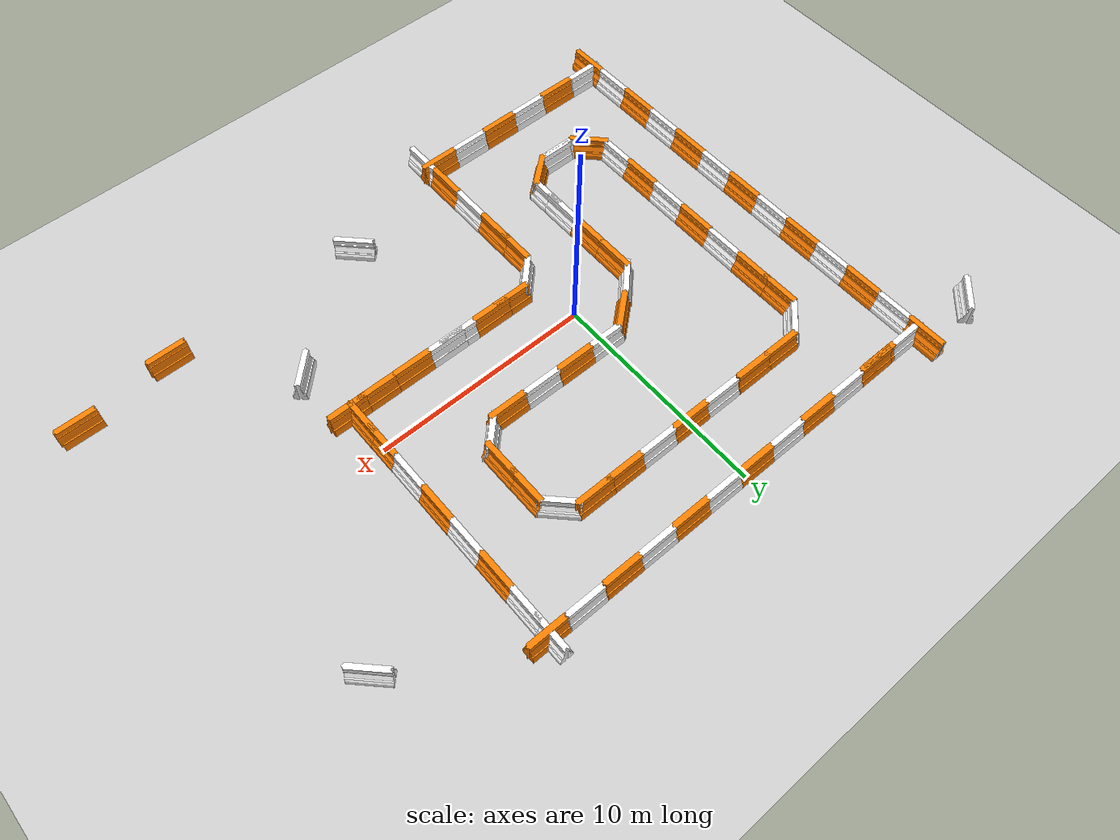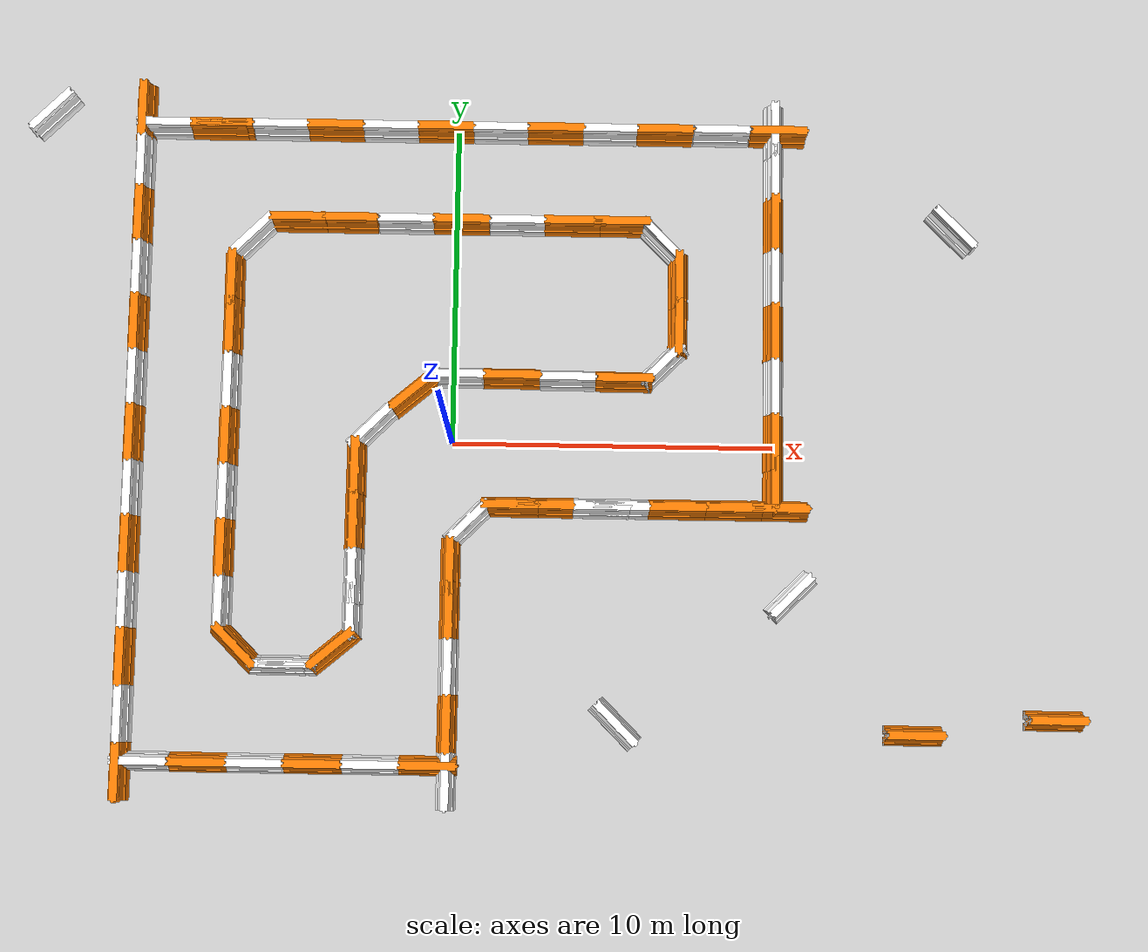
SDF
<sdf version="1.6">
 <world name="default">
  <light name="sun" type="directional">
   <pose>0 0 10 0 -0 0</pose>
   <diffuse>0.8 0.8 0.8 1</diffuse>
   <specular>0.2 0.2 0.2 1</specular>
   <attenuation>
    <range>1000</range>
    <constant>0.9</constant>
    <linear>0.01</linear>
    <quadratic>0.001</quadratic>
   </attenuation>
   <direction>-0.5 0.1 -0.9</direction>
  </light>
  <model name="ground_plane">
   <static>1</static>
   <link name="link">
    <collision name="collision">
     <geometry><plane><normal>0 0 1</normal><size>100 100</size></plane></geometry>
     <surface><friction><ode><mu>100</mu><mu2>50</mu2></ode></friction></surface>
    </collision>
    <visual name="visual">
     <cast_shadows>0</cast_shadows>
     <geometry><plane><normal>0 0 1</normal><size>100 100</size></plane></geometry>
     <material>
      <script><uri>file://media/materials/scripts/gazebo.material</uri><name>Gazebo/Grey</name></script>
     </material>
    </visual>
   </link>
  </model>
  <gravity>0 0 -9.8</gravity>
  <magnetic_field>6e-06 2.3e-05 -4.2e-05</magnetic_field>
  <atmosphere type="adiabatic"/>
  <physics name="default_physics" default="0" type="ode">
   <max_step_size>0.001</max_step_size>
   <real_time_factor>1</real_time_factor>
   <real_time_update_rate>1000</real_time_update_rate>
  </physics>
  <scene><ambient>0.4 0.4 0.4 1</ambient><background>0.7 0.7 0.7 1</background><shadows>1</shadows></scene>
  <spherical_coordinates>
   <surface_model>EARTH_WGS84</surface_model>
   <latitude_deg>0</latitude_deg>
   <longitude_deg>0</longitude_deg>
   <elevation>0</elevation>
   <heading_deg>0</heading_deg>
  </spherical_coordinates>
  <model name="drc_practice_organge_jersey_barrier">
   <static>1</static>
   <link name="link">
    <visual name="visual">
     <geometry>
      <mesh><uri>model://drc_practice_orange_jersey_barrier/meshes/jersey_barrier.dae</uri></mesh>
     </geometry>
    </visual>
    <collision name="collision">
     <geometry>
      <mesh><uri>model://drc_practice_orange_jersey_barrier/meshes/jersey_barrier.dae</uri></mesh>
     </geometry>
    </collision>
   </link>
   <pose>-10 7.08087 0 0 -0 0</pose>
  </model>
  <model name="drc_practice_white_jersey_barrier">
   <static>1</static>
   <link name="link">
    <visual name="visual">
     <geometry>
      <mesh><uri>model://drc_practice_white_jersey_barrier/meshes/jersey_barrier.dae</uri></mesh>
     </geometry>
    </visual>
    <collision name="collision">
     <geometry>
      <mesh><uri>model://drc_practice_white_jersey_barrier/meshes/jersey_barrier.dae</uri></mesh>
     </geometry>
    </collision>
   </link>
   <pose>-12.8795 10.3745 0 0 0 -0.785398</pose>
  </model>
  <model name="drc_practice_white_jersey_barrier_0">
   <static>1</static>
   <link name="link">
    <visual name="visual">
     <geometry>
      <mesh><uri>model://drc_practice_white_jersey_barrier/meshes/jersey_barrier.dae</uri></mesh>
     </geometry>
    </visual>
    <collision name="collision">
     <geometry>
      <mesh><uri>model://drc_practice_white_jersey_barrier/meshes/jersey_barrier.dae</uri></mesh>
     </geometry>
    </collision>
   </link>
   <pose>-10 5.35665 0 0 -0 0</pose>
  </model>
  <model name="drc_practice_organge_jersey_barrier_0">
   <static>1</static>
   <link name="link">
    <visual name="visual">
     <geometry>
      <mesh><uri>model://drc_practice_orange_jersey_barrier/meshes/jersey_barrier.dae</uri></mesh>
     </geometry>
    </visual>
    <collision name="collision">
     <geometry>
      <mesh><uri>model://drc_practice_orange_jersey_barrier/meshes/jersey_barrier.dae</uri></mesh>
     </geometry>
    </collision>
   </link>
   <pose>-10 3.60758 0 0 -0 0</pose>
  </model>
  <model name="drc_practice_white_jersey_barrier_1">
   <static>1</static>
   <link name="link">
    <visual name="visual">
     <geometry>
      <mesh><uri>model://drc_practice_white_jersey_barrier/meshes/jersey_barrier.dae</uri></mesh>
     </geometry>
    </visual>
    <collision name="collision">
     <geometry>
      <mesh><uri>model://drc_practice_white_jersey_barrier/meshes/jersey_barrier.dae</uri></mesh>
     </geometry>
    </collision>
   </link>
   <pose>-10 1.85885 0 0 -0 0</pose>
  </model>
  <model name="drc_practice_organge_jersey_barrier_1">
   <static>1</static>
   <link name="link">
    <visual name="visual">
     <geometry>
      <mesh><uri>model://drc_practice_orange_jersey_barrier/meshes/jersey_barrier.dae</uri></mesh>
     </geometry>
    </visual>
    <collision name="collision">
     <geometry>
      <mesh><uri>model://drc_practice_orange_jersey_barrier/meshes/jersey_barrier.dae</uri></mesh>
     </geometry>
    </collision>
   </link>
   <pose>-10 0.11035 0 0 -0 0</pose>
  </model>
  <model name="drc_practice_white_jersey_barrier_2">
   <static>1</static>
   <link name="link">
    <visual name="visual">
     <geometry>
      <mesh><uri>model://drc_practice_white_jersey_barrier/meshes/jersey_barrier.dae</uri></mesh>
     </geometry>
    </visual>
    <collision name="collision">
     <geometry>
      <mesh><uri>model://drc_practice_white_jersey_barrier/meshes/jersey_barrier.dae</uri></mesh>
     </geometry>
    </collision>
   </link>
   <pose>-10 -1.61051 0 0 -0 0</pose>
  </model>
  <model name="drc_practice_white_jersey_barrier_3">
   <static>1</static>
   <link name="link">
    <visual name="visual">
     <geometry>
      <mesh><uri>model://drc_practice_white_jersey_barrier/meshes/jersey_barrier.dae</uri></mesh>
     </geometry>
    </visual>
    <collision name="collision">
     <geometry>
      <mesh><uri>model://drc_practice_white_jersey_barrier/meshes/jersey_barrier.dae</uri></mesh>
     </geometry>
    </collision>
   </link>
   <pose>-10 -5.08491 0 0 -0 0</pose>
  </model>
  <model name="drc_practice_organge_jersey_barrier_3">
   <static>1</static>
   <link name="link">
    <visual name="visual">
     <geometry>
      <mesh><uri>model://drc_practice_orange_jersey_barrier/meshes/jersey_barrier.dae</uri></mesh>
     </geometry>
    </visual>
    <collision name="collision">
     <geometry>
      <mesh><uri>model://drc_practice_orange_jersey_barrier/meshes/jersey_barrier.dae</uri></mesh>
     </geometry>
    </collision>
   </link>
   <pose>-10 -6.82391 0 0 -0 0</pose>
  </model>
  <model name="drc_practice_white_jersey_barrier_4">
   <static>1</static>
   <link name="link">
    <visual name="visual">
     <geometry>
      <mesh><uri>model://drc_practice_white_jersey_barrier/meshes/jersey_barrier.dae</uri></mesh>
     </geometry>
    </visual>
    <collision name="collision">
     <geometry>
      <mesh><uri>model://drc_practice_white_jersey_barrier/meshes/jersey_barrier.dae</uri></mesh>
     </geometry>
    </collision>
   </link>
   <pose>5.15234 -8.64011 0 0 -0 0.785398</pose>
  </model>
  <model name="drc_practice_organge_jersey_barrier_4">
   <static>1</static>
   <link name="link">
    <visual name="visual">
     <geometry>
      <mesh><uri>model://drc_practice_orange_jersey_barrier/meshes/jersey_barrier.dae</uri></mesh>
     </geometry>
    </visual>
    <collision name="collision">
     <geometry>
      <mesh><uri>model://drc_practice_orange_jersey_barrier/meshes/jersey_barrier.dae</uri></mesh>
     </geometry>
    </collision>
   </link>
   <pose>-7.39341 10 0 0 -0 1.5708</pose>
  </model>
  <model name="drc_practice_white_jersey_barrier_5">
   <static>1</static>
   <link name="link">
    <visual name="visual">
     <geometry>
      <mesh><uri>model://drc_practice_white_jersey_barrier/meshes/jersey_barrier.dae</uri></mesh>
     </geometry>
    </visual>
    <collision name="collision">
     <geometry>
      <mesh><uri>model://drc_practice_white_jersey_barrier/meshes/jersey_barrier.dae</uri></mesh>
     </geometry>
    </collision>
   </link>
   <pose>-5.63238 10 0 0 -0 1.5708</pose>
  </model>
  <model name="drc_practice_organge_jersey_barrier_4_clone">
   <static>1</static>
   <link name="link">
    <visual name="visual">
     <geometry>
      <mesh><uri>model://drc_practice_orange_jersey_barrier/meshes/jersey_barrier.dae</uri></mesh>
     </geometry>
    </visual>
    <collision name="collision">
     <geometry>
      <mesh><uri>model://drc_practice_orange_jersey_barrier/meshes/jersey_barrier.dae</uri></mesh>
     </geometry>
    </collision>
   </link>
   <pose>-3.89758 10 0 0 -0 1.5708</pose>
  </model>
  <model name="drc_practice_white_jersey_barrier_5_clone">
   <static>1</static>
   <link name="link">
    <visual name="visual">
     <geometry>
      <mesh><uri>model://drc_practice_white_jersey_barrier/meshes/jersey_barrier.dae</uri></mesh>
     </geometry>
    </visual>
    <collision name="collision">
     <geometry>
      <mesh><uri>model://drc_practice_white_jersey_barrier/meshes/jersey_barrier.dae</uri></mesh>
     </geometry>
    </collision>
   </link>
   <pose>-2.14743 10 0 0 -0 1.5708</pose>
  </model>
  <model name="drc_practice_organge_jersey_barrier_4_clone_clone">
   <static>1</static>
   <link name="link">
    <visual name="visual">
     <geometry>
      <mesh><uri>model://drc_practice_orange_jersey_barrier/meshes/jersey_barrier.dae</uri></mesh>
     </geometry>
    </visual>
    <collision name="collision">
     <geometry>
      <mesh><uri>model://drc_practice_orange_jersey_barrier/meshes/jersey_barrier.dae</uri></mesh>
     </geometry>
    </collision>
   </link>
   <pose>-0.410261 10 0 0 -0 1.5708</pose>
  </model>
  <model name="drc_practice_white_jersey_barrier_5_clone_clone">
   <static>1</static>
   <link name="link">
    <visual name="visual">
     <geometry>
      <mesh><uri>model://drc_practice_white_jersey_barrier/meshes/jersey_barrier.dae</uri></mesh>
     </geometry>
    </visual>
    <collision name="collision">
     <geometry>
      <mesh><uri>model://drc_practice_white_jersey_barrier/meshes/jersey_barrier.dae</uri></mesh>
     </geometry>
    </collision>
   </link>
   <pose>1.32669 10 0 0 -0 1.5708</pose>
  </model>
  <model name="drc_practice_organge_jersey_barrier_4_clone_clone_clone">
   <static>1</static>
   <link name="link">
    <visual name="visual">
     <geometry>
      <mesh><uri>model://drc_practice_orange_jersey_barrier/meshes/jersey_barrier.dae</uri></mesh>
     </geometry>
    </visual>
    <collision name="collision">
     <geometry>
      <mesh><uri>model://drc_practice_orange_jersey_barrier/meshes/jersey_barrier.dae</uri></mesh>
     </geometry>
    </collision>
   </link>
   <pose>3.06357 10 0 0 -0 1.5708</pose>
  </model>
  <model name="drc_practice_white_jersey_barrier_5_clone_clone_clone">
   <static>1</static>
   <link name="link">
    <visual name="visual">
     <geometry>
      <mesh><uri>model://drc_practice_white_jersey_barrier/meshes/jersey_barrier.dae</uri></mesh>
     </geometry>
    </visual>
    <collision name="collision">
     <geometry>
      <mesh><uri>model://drc_practice_white_jersey_barrier/meshes/jersey_barrier.dae</uri></mesh>
     </geometry>
    </collision>
   </link>
   <pose>4.7739 10 0 0 -0 1.5708</pose>
  </model>
  <model name="drc_practice_organge_jersey_barrier_4_clone_clone_clone_clone">
   <static>1</static>
   <link name="link">
    <visual name="visual">
     <geometry>
      <mesh><uri>model://drc_practice_orange_jersey_barrier/meshes/jersey_barrier.dae</uri></mesh>
     </geometry>
    </visual>
    <collision name="collision">
     <geometry>
      <mesh><uri>model://drc_practice_orange_jersey_barrier/meshes/jersey_barrier.dae</uri></mesh>
     </geometry>
    </collision>
   </link>
   <pose>6.52402 10 0 0 -0 1.5708</pose>
  </model>
  <model name="drc_practice_white_jersey_barrier_4_clone">
   <static>1</static>
   <link name="link">
    <visual name="visual">
     <geometry>
      <mesh><uri>model://drc_practice_white_jersey_barrier/meshes/jersey_barrier.dae</uri></mesh>
     </geometry>
    </visual>
    <collision name="collision">
     <geometry>
      <mesh><uri>model://drc_practice_white_jersey_barrier/meshes/jersey_barrier.dae</uri></mesh>
     </geometry>
    </collision>
   </link>
   <pose>15.632 6.97613 0 0 -0 0.785398</pose>
  </model>
  <model name="drc_practice_organge_jersey_barrier_clone">
   <static>1</static>
   <link name="link">
    <visual name="visual">
     <geometry>
      <mesh><uri>model://drc_practice_orange_jersey_barrier/meshes/jersey_barrier.dae</uri></mesh>
     </geometry>
    </visual>
    <collision name="collision">
     <geometry>
      <mesh><uri>model://drc_practice_orange_jersey_barrier/meshes/jersey_barrier.dae</uri></mesh>
     </geometry>
    </collision>
   </link>
   <pose>10 7.06873 0 0 -0 0</pose>
  </model>
  <model name="drc_practice_white_jersey_barrier_6">
   <static>1</static>
   <link name="link">
    <visual name="visual">
     <geometry>
      <mesh><uri>model://drc_practice_white_jersey_barrier/meshes/jersey_barrier.dae</uri></mesh>
     </geometry>
    </visual>
    <collision name="collision">
     <geometry>
      <mesh><uri>model://drc_practice_white_jersey_barrier/meshes/jersey_barrier.dae</uri></mesh>
     </geometry>
    </collision>
   </link>
   <pose>10 5.32155 0 0 -0 0</pose>
  </model>
  <model name="drc_practice_organge_jersey_barrier_5">
   <static>1</static>
   <link name="link">
    <visual name="visual">
     <geometry>
      <mesh><uri>model://drc_practice_orange_jersey_barrier/meshes/jersey_barrier.dae</uri></mesh>
     </geometry>
    </visual>
    <collision name="collision">
     <geometry>
      <mesh><uri>model://drc_practice_orange_jersey_barrier/meshes/jersey_barrier.dae</uri></mesh>
     </geometry>
    </collision>
   </link>
   <pose>10 3.5821 0 0 -0 0</pose>
  </model>
  <model name="drc_practice_white_jersey_barrier_7">
   <static>1</static>
   <link name="link">
    <visual name="visual">
     <geometry>
      <mesh><uri>model://drc_practice_white_jersey_barrier/meshes/jersey_barrier.dae</uri></mesh>
     </geometry>
    </visual>
    <collision name="collision">
     <geometry>
      <mesh><uri>model://drc_practice_white_jersey_barrier/meshes/jersey_barrier.dae</uri></mesh>
     </geometry>
    </collision>
   </link>
   <pose>10 1.85279 0 0 -0 0</pose>
  </model>
  <model name="drc_practice_organge_jersey_barrier_6">
   <static>1</static>
   <link name="link">
    <visual name="visual">
     <geometry>
      <mesh><uri>model://drc_practice_orange_jersey_barrier/meshes/jersey_barrier.dae</uri></mesh>
     </geometry>
    </visual>
    <collision name="collision">
     <geometry>
      <mesh><uri>model://drc_practice_orange_jersey_barrier/meshes/jersey_barrier.dae</uri></mesh>
     </geometry>
    </collision>
   </link>
   <pose>10 0.08678 0 0 -0 0</pose>
  </model>
  <model name="drc_practice_white_jersey_barrier_clone">
   <static>1</static>
   <link name="link">
    <visual name="visual">
     <geometry>
      <mesh><uri>model://drc_practice_white_jersey_barrier/meshes/jersey_barrier.dae</uri></mesh>
     </geometry>
    </visual>
    <collision name="collision">
     <geometry>
      <mesh><uri>model://drc_practice_white_jersey_barrier/meshes/jersey_barrier.dae</uri></mesh>
     </geometry>
    </collision>
   </link>
   <pose>10.5386 -4.66593 0 0 0 -0.785398</pose>
  </model>
  <model name="drc_practice_organge_jersey_barrier_4_clone_clone_clone_clone_clone">
   <static>1</static>
   <link name="link">
    <visual name="visual">
     <geometry>
      <mesh><uri>model://drc_practice_orange_jersey_barrier/meshes/jersey_barrier.dae</uri></mesh>
     </geometry>
    </visual>
    <collision name="collision">
     <geometry>
      <mesh><uri>model://drc_practice_orange_jersey_barrier/meshes/jersey_barrier.dae</uri></mesh>
     </geometry>
    </collision>
   </link>
   <pose>7 -2 0 0 -0 1.5708</pose>
  </model>
  <model name="drc_practice_white_jersey_barrier_5_clone_clone_clone_clone">
   <static>1</static>
   <link name="link">
    <visual name="visual">
     <geometry>
      <mesh><uri>model://drc_practice_white_jersey_barrier/meshes/jersey_barrier.dae</uri></mesh>
     </geometry>
    </visual>
    <collision name="collision">
     <geometry>
      <mesh><uri>model://drc_practice_white_jersey_barrier/meshes/jersey_barrier.dae</uri></mesh>
     </geometry>
    </collision>
   </link>
   <pose>4.6576 -2 0 0 -0 1.5708</pose>
  </model>
  <model name="drc_practice_organge_jersey_barrier_4_clone_clone_clone_clone_0">
   <static>1</static>
   <link name="link">
    <visual name="visual">
     <geometry>
      <mesh><uri>model://drc_practice_orange_jersey_barrier/meshes/jersey_barrier.dae</uri></mesh>
     </geometry>
    </visual>
    <collision name="collision">
     <geometry>
      <mesh><uri>model://drc_practice_orange_jersey_barrier/meshes/jersey_barrier.dae</uri></mesh>
     </geometry>
    </collision>
   </link>
   <pose>2.90363 -2 0 0 -0 1.5708</pose>
  </model>
  <model name="drc_practice_white_jersey_barrier_clone_0">
   <static>1</static>
   <link name="link">
    <visual name="visual">
     <geometry>
      <mesh><uri>model://drc_practice_white_jersey_barrier/meshes/jersey_barrier.dae</uri></mesh>
     </geometry>
    </visual>
    <collision name="collision">
     <geometry>
      <mesh><uri>model://drc_practice_white_jersey_barrier/meshes/jersey_barrier.dae</uri></mesh>
     </geometry>
    </collision>
   </link>
   <pose>0.555745 -2.52163 0 0 0 -0.785398</pose>
  </model>
  <model name="drc_practice_organge_jersey_barrier_clone_clone">
   <static>1</static>
   <link name="link">
    <visual name="visual">
     <geometry>
      <mesh><uri>model://drc_practice_orange_jersey_barrier/meshes/jersey_barrier.dae</uri></mesh>
     </geometry>
    </visual>
    <collision name="collision">
     <geometry>
      <mesh><uri>model://drc_practice_orange_jersey_barrier/meshes/jersey_barrier.dae</uri></mesh>
     </geometry>
    </collision>
   </link>
   <pose>0 -3.8979 0 0 -0 0</pose>
  </model>
  <model name="drc_practice_white_jersey_barrier_7_clone">
   <static>1</static>
   <link name="link">
    <visual name="visual">
     <geometry>
      <mesh><uri>model://drc_practice_white_jersey_barrier/meshes/jersey_barrier.dae</uri></mesh>
     </geometry>
    </visual>
    <collision name="collision">
     <geometry>
      <mesh><uri>model://drc_practice_white_jersey_barrier/meshes/jersey_barrier.dae</uri></mesh>
     </geometry>
    </collision>
   </link>
   <pose>0 -7 0 0 -0 0</pose>
  </model>
  <model name="drc_practice_organge_jersey_barrier_4_clone_0">
   <static>1</static>
   <link name="link">
    <visual name="visual">
     <geometry>
      <mesh><uri>model://drc_practice_orange_jersey_barrier/meshes/jersey_barrier.dae</uri></mesh>
     </geometry>
    </visual>
    <collision name="collision">
     <geometry>
      <mesh><uri>model://drc_practice_orange_jersey_barrier/meshes/jersey_barrier.dae</uri></mesh>
     </geometry>
    </collision>
   </link>
   <pose>-7.55978 -10 0 0 -0 1.5708</pose>
  </model>
  <model name="drc_practice_white_jersey_barrier_5_clone_0">
   <static>1</static>
   <link name="link">
    <visual name="visual">
     <geometry>
      <mesh><uri>model://drc_practice_white_jersey_barrier/meshes/jersey_barrier.dae</uri></mesh>
     </geometry>
    </visual>
    <collision name="collision">
     <geometry>
      <mesh><uri>model://drc_practice_white_jersey_barrier/meshes/jersey_barrier.dae</uri></mesh>
     </geometry>
    </collision>
   </link>
   <pose>-5.81995 -10 0 0 -0 1.5708</pose>
  </model>
  <model name="drc_practice_organge_jersey_barrier_4_clone_clone_0">
   <static>1</static>
   <link name="link">
    <visual name="visual">
     <geometry>
      <mesh><uri>model://drc_practice_orange_jersey_barrier/meshes/jersey_barrier.dae</uri></mesh>
     </geometry>
    </visual>
    <collision name="collision">
     <geometry>
      <mesh><uri>model://drc_practice_orange_jersey_barrier/meshes/jersey_barrier.dae</uri></mesh>
     </geometry>
    </collision>
   </link>
   <pose>-4.05681 -10 0 0 -0 1.5708</pose>
  </model>
  <model name="drc_practice_white_jersey_barrier_5_clone_1">
   <static>1</static>
   <link name="link">
    <visual name="visual">
     <geometry>
      <mesh><uri>model://drc_practice_white_jersey_barrier/meshes/jersey_barrier.dae</uri></mesh>
     </geometry>
    </visual>
    <collision name="collision">
     <geometry>
      <mesh><uri>model://drc_practice_white_jersey_barrier/meshes/jersey_barrier.dae</uri></mesh>
     </geometry>
    </collision>
   </link>
   <pose>-2.29786 -10 0 0 -0 1.5708</pose>
  </model>
  <model name="drc_practice_organge_jersey_barrier_7">
   <static>1</static>
   <link name="link">
    <visual name="visual">
     <geometry>
      <mesh><uri>model://drc_practice_orange_jersey_barrier/meshes/jersey_barrier.dae</uri></mesh>
     </geometry>
    </visual>
    <collision name="collision">
     <geometry>
      <mesh><uri>model://drc_practice_orange_jersey_barrier/meshes/jersey_barrier.dae</uri></mesh>
     </geometry>
    </collision>
   </link>
   <pose>-1.23857 1.54684 0 0 0 -0.867327</pose>
  </model>
  <model name="drc_practice_organge_jersey_barrier_9">
   <static>1</static>
   <link name="link">
    <visual name="visual">
     <geometry>
      <mesh><uri>model://drc_practice_orange_jersey_barrier/meshes/jersey_barrier.dae</uri></mesh>
     </geometry>
    </visual>
    <collision name="collision">
     <geometry>
      <mesh><uri>model://drc_practice_orange_jersey_barrier/meshes/jersey_barrier.dae</uri></mesh>
     </geometry>
    </collision>
   </link>
   <pose>-7 3.5532 0 0 -0 0</pose>
  </model>
  <model name="drc_practice_white_jersey_barrier_8">
   <static>1</static>
   <link name="link">
    <visual name="visual">
     <geometry>
      <mesh><uri>model://drc_practice_white_jersey_barrier/meshes/jersey_barrier.dae</uri></mesh>
     </geometry>
    </visual>
    <collision name="collision">
     <geometry>
      <mesh><uri>model://drc_practice_white_jersey_barrier/meshes/jersey_barrier.dae</uri></mesh>
     </geometry>
    </collision>
   </link>
   <pose>-7.01367 1.8029 0 0 -0 0</pose>
  </model>
  <model name="drc_practice_organge_jersey_barrier_10">
   <static>1</static>
   <link name="link">
    <visual name="visual">
     <geometry>
      <mesh><uri>model://drc_practice_orange_jersey_barrier/meshes/jersey_barrier.dae</uri></mesh>
     </geometry>
    </visual>
    <collision name="collision">
     <geometry>
      <mesh><uri>model://drc_practice_orange_jersey_barrier/meshes/jersey_barrier.dae</uri></mesh>
     </geometry>
    </collision>
   </link>
   <pose>-7.02522 0.054065 0 0 -0 0</pose>
  </model>
  <model name="drc_practice_white_jersey_barrier_9">
   <static>1</static>
   <link name="link">
    <visual name="visual">
     <geometry>
      <mesh><uri>model://drc_practice_white_jersey_barrier/meshes/jersey_barrier.dae</uri></mesh>
     </geometry>
    </visual>
    <collision name="collision">
     <geometry>
      <mesh><uri>model://drc_practice_white_jersey_barrier/meshes/jersey_barrier.dae</uri></mesh>
     </geometry>
    </collision>
   </link>
   <pose>-7.03681 -1.6945 0 0 -0 0</pose>
  </model>
  <model name="drc_practice_organge_jersey_barrier_11">
   <static>1</static>
   <link name="link">
    <visual name="visual">
     <geometry>
      <mesh><uri>model://drc_practice_orange_jersey_barrier/meshes/jersey_barrier.dae</uri></mesh>
     </geometry>
    </visual>
    <collision name="collision">
     <geometry>
      <mesh><uri>model://drc_practice_orange_jersey_barrier/meshes/jersey_barrier.dae</uri></mesh>
     </geometry>
    </collision>
   </link>
   <pose>-7.04825 -3.42207 0 0 -0 0</pose>
  </model>
  <model name="drc_practice_organge_jersey_barrier_12">
   <static>1</static>
   <link name="link">
    <visual name="visual">
     <geometry>
      <mesh><uri>model://drc_practice_orange_jersey_barrier/meshes/jersey_barrier.dae</uri></mesh>
     </geometry>
    </visual>
    <collision name="collision">
     <geometry>
      <mesh><uri>model://drc_practice_orange_jersey_barrier/meshes/jersey_barrier.dae</uri></mesh>
     </geometry>
    </collision>
   </link>
   <pose>-6.53992 -6.44734 0 0 -0 0.785398</pose>
  </model>
  <model name="drc_practice_white_jersey_barrier_5_clone_0_clone">
   <static>1</static>
   <link name="link">
    <visual name="visual">
     <geometry>
      <mesh><uri>model://drc_practice_white_jersey_barrier/meshes/jersey_barrier.dae</uri></mesh>
     </geometry>
    </visual>
    <collision name="collision">
     <geometry>
      <mesh><uri>model://drc_practice_white_jersey_barrier/meshes/jersey_barrier.dae</uri></mesh>
     </geometry>
    </collision>
   </link>
   <pose>-5.24161 -7.00081 0 0 -0 1.5708</pose>
  </model>
  <model name="drc_practice_organge_jersey_barrier_7_clone">
   <static>1</static>
   <link name="link">
    <visual name="visual">
     <geometry>
      <mesh><uri>model://drc_practice_orange_jersey_barrier/meshes/jersey_barrier.dae</uri></mesh>
     </geometry>
    </visual>
    <collision name="collision">
     <geometry>
      <mesh><uri>model://drc_practice_orange_jersey_barrier/meshes/jersey_barrier.dae</uri></mesh>
     </geometry>
    </collision>
   </link>
   <pose>-3.56152 -6.50014 0 0 0 -0.867327</pose>
  </model>
  <model name="drc_practice_white_jersey_barrier_7_clone_clone">
   <static>1</static>
   <link name="link">
    <visual name="visual">
     <geometry>
      <mesh><uri>model://drc_practice_white_jersey_barrier/meshes/jersey_barrier.dae</uri></mesh>
     </geometry>
    </visual>
    <collision name="collision">
     <geometry>
      <mesh><uri>model://drc_practice_white_jersey_barrier/meshes/jersey_barrier.dae</uri></mesh>
     </geometry>
    </collision>
   </link>
   <pose>-3 -4.24136 0 0 -0 0</pose>
  </model>
  <model name="drc_practice_white_jersey_barrier_clone_1">
   <static>1</static>
   <link name="link">
    <visual name="visual">
     <geometry>
      <mesh><uri>model://drc_practice_white_jersey_barrier/meshes/jersey_barrier.dae</uri></mesh>
     </geometry>
    </visual>
    <collision name="collision">
     <geometry>
      <mesh><uri>model://drc_practice_white_jersey_barrier/meshes/jersey_barrier.dae</uri></mesh>
     </geometry>
    </collision>
   </link>
   <pose>-2.54153 0.412015 0 0 0 -0.785398</pose>
  </model>
  <model name="drc_practice_organge_jersey_barrier_8_clone">
   <static>1</static>
   <link name="link">
    <visual name="visual">
     <geometry>
      <mesh><uri>model://drc_practice_orange_jersey_barrier/meshes/jersey_barrier.dae</uri></mesh>
     </geometry>
    </visual>
    <collision name="collision">
     <geometry>
      <mesh><uri>model://drc_practice_orange_jersey_barrier/meshes/jersey_barrier.dae</uri></mesh>
     </geometry>
    </collision>
   </link>
   <pose>-3 -2.5094 0 0 -0 0</pose>
  </model>
  <model name="drc_practice_organge_jersey_barrier_4_clone_clone_clone_clone_0_clone">
   <static>1</static>
   <link name="link">
    <visual name="visual">
     <geometry>
      <mesh><uri>model://drc_practice_orange_jersey_barrier/meshes/jersey_barrier.dae</uri></mesh>
     </geometry>
    </visual>
    <collision name="collision">
     <geometry>
      <mesh><uri>model://drc_practice_orange_jersey_barrier/meshes/jersey_barrier.dae</uri></mesh>
     </geometry>
    </collision>
   </link>
   <pose>18.6082 -8.35515 0 0 -0 1.5708</pose>
  </model>
  <model name="drc_practice_organge_jersey_barrier_4_clone_clone_clone_clone_clone_clone">
   <static>1</static>
   <link name="link">
    <visual name="visual">
     <geometry>
      <mesh><uri>model://drc_practice_orange_jersey_barrier/meshes/jersey_barrier.dae</uri></mesh>
     </geometry>
    </visual>
    <collision name="collision">
     <geometry>
      <mesh><uri>model://drc_practice_orange_jersey_barrier/meshes/jersey_barrier.dae</uri></mesh>
     </geometry>
    </collision>
   </link>
   <pose>1.81686 2.05907 0 0 -0 1.5708</pose>
  </model>
  <model name="drc_practice_white_jersey_barrier_clone_clone">
   <static>1</static>
   <link name="link">
    <visual name="visual">
     <geometry>
      <mesh><uri>model://drc_practice_white_jersey_barrier/meshes/jersey_barrier.dae</uri></mesh>
     </geometry>
    </visual>
    <collision name="collision">
     <geometry>
      <mesh><uri>model://drc_practice_white_jersey_barrier/meshes/jersey_barrier.dae</uri></mesh>
     </geometry>
    </collision>
   </link>
   <pose>6.52182 2.50856 0 0 0 -0.785398</pose>
  </model>
  <model name="drc_practice_organge_jersey_barrier_6_clone">
   <static>1</static>
   <link name="link">
    <visual name="visual">
     <geometry>
      <mesh><uri>model://drc_practice_orange_jersey_barrier/meshes/jersey_barrier.dae</uri></mesh>
     </geometry>
    </visual>
    <collision name="collision">
     <geometry>
      <mesh><uri>model://drc_practice_orange_jersey_barrier/meshes/jersey_barrier.dae</uri></mesh>
     </geometry>
    </collision>
   </link>
   <pose>7 3.68718 0 0 -0 0</pose>
  </model>
  <model name="drc_practice_white_jersey_barrier_4_clone_0">
   <static>1</static>
   <link name="link">
    <visual name="visual">
     <geometry>
      <mesh><uri>model://drc_practice_white_jersey_barrier/meshes/jersey_barrier.dae</uri></mesh>
     </geometry>
    </visual>
    <collision name="collision">
     <geometry>
      <mesh><uri>model://drc_practice_white_jersey_barrier/meshes/jersey_barrier.dae</uri></mesh>
     </geometry>
    </collision>
   </link>
   <pose>6.44944 6.46742 0 0 -0 0.785398</pose>
  </model>
  <model name="drc_practice_organge_jersey_barrier_4_clone_clone_clone_clone_clone_0">
   <static>1</static>
   <link name="link">
    <visual name="visual">
     <geometry>
      <mesh><uri>model://drc_practice_orange_jersey_barrier/meshes/jersey_barrier.dae</uri></mesh>
     </geometry>
    </visual>
    <collision name="collision">
     <geometry>
      <mesh><uri>model://drc_practice_orange_jersey_barrier/meshes/jersey_barrier.dae</uri></mesh>
     </geometry>
    </collision>
   </link>
   <pose>3.63326 7 0 0 -0 1.5708</pose>
  </model>
  <model name="drc_practice_white_jersey_barrier_5_clone_clone_clone_clone_0">
   <static>1</static>
   <link name="link">
    <visual name="visual">
     <geometry>
      <mesh><uri>model://drc_practice_white_jersey_barrier/meshes/jersey_barrier.dae</uri></mesh>
     </geometry>
    </visual>
    <collision name="collision">
     <geometry>
      <mesh><uri>model://drc_practice_white_jersey_barrier/meshes/jersey_barrier.dae</uri></mesh>
     </geometry>
    </collision>
   </link>
   <pose>1.90066 7 0 0 -0 1.5708</pose>
  </model>
  <model name="drc_practice_organge_jersey_barrier_4_clone_clone_clone_clone_1">
   <static>1</static>
   <link name="link">
    <visual name="visual">
     <geometry>
      <mesh><uri>model://drc_practice_orange_jersey_barrier/meshes/jersey_barrier.dae</uri></mesh>
     </geometry>
    </visual>
    <collision name="collision">
     <geometry>
      <mesh><uri>model://drc_practice_orange_jersey_barrier/meshes/jersey_barrier.dae</uri></mesh>
     </geometry>
    </collision>
   </link>
   <pose>0.137699 7 0 0 -0 1.5708</pose>
  </model>
  <model name="drc_practice_white_jersey_barrier_5_clone_clone_clone_0">
   <static>1</static>
   <link name="link">
    <visual name="visual">
     <geometry>
      <mesh><uri>model://drc_practice_white_jersey_barrier/meshes/jersey_barrier.dae</uri></mesh>
     </geometry>
    </visual>
    <collision name="collision">
     <geometry>
      <mesh><uri>model://drc_practice_white_jersey_barrier/meshes/jersey_barrier.dae</uri></mesh>
     </geometry>
    </collision>
   </link>
   <pose>-1.59683 7 0 0 -0 1.5708</pose>
  </model>
  <model name="drc_practice_organge_jersey_barrier_4_clone_clone_clone_0">
   <static>1</static>
   <link name="link">
    <visual name="visual">
     <geometry>
      <mesh><uri>model://drc_practice_orange_jersey_barrier/meshes/jersey_barrier.dae</uri></mesh>
     </geometry>
    </visual>
    <collision name="collision">
     <geometry>
      <mesh><uri>model://drc_practice_orange_jersey_barrier/meshes/jersey_barrier.dae</uri></mesh>
     </geometry>
    </collision>
   </link>
   <pose>-3.38822 7 0 0 -0 1.5708</pose>
  </model>
  <model name="drc_practice_white_jersey_barrier_clone_1_clone">
   <static>1</static>
   <link name="link">
    <visual name="visual">
     <geometry>
      <mesh><uri>model://drc_practice_white_jersey_barrier/meshes/jersey_barrier.dae</uri></mesh>
     </geometry>
    </visual>
    <collision name="collision">
     <geometry>
      <mesh><uri>model://drc_practice_white_jersey_barrier/meshes/jersey_barrier.dae</uri></mesh>
     </geometry>
    </collision>
   </link>
   <pose>-6.41228 6.44647 0 0 0 -0.785398</pose>
  </model>
  <model name="drc_practice_organge_jersey_barrier_4_clone_1">
   <static>1</static>
   <link name="link">
    <visual name="visual">
     <geometry>
      <mesh><uri>model://drc_practice_orange_jersey_barrier/meshes/jersey_barrier.dae</uri></mesh>
     </geometry>
    </visual>
    <collision name="collision">
     <geometry>
      <mesh><uri>model://drc_practice_orange_jersey_barrier/meshes/jersey_barrier.dae</uri></mesh>
     </geometry>
    </collision>
   </link>
   <pose>-7.59213 9.98992 0 0 -0 1.5708</pose>
  </model>
  <model name="drc_practice_organge_jersey_barrier_4_clone_clone_clone_clone_clone_clone_0">
   <static>1</static>
   <link name="link">
    <visual name="visual">
     <geometry>
      <mesh><uri>model://drc_practice_orange_jersey_barrier/meshes/jersey_barrier.dae</uri></mesh>
     </geometry>
    </visual>
    <collision name="collision">
     <geometry>
      <mesh><uri>model://drc_practice_orange_jersey_barrier/meshes/jersey_barrier.dae</uri></mesh>
     </geometry>
    </collision>
   </link>
   <pose>8.74941 -2 0 0 -0 1.5708</pose>
  </model>
  <model name="drc_practice_white_jersey_barrier_5_clone_clone_clone_clone_clone">
   <static>1</static>
   <link name="link">
    <visual name="visual">
     <geometry>
      <mesh><uri>model://drc_practice_white_jersey_barrier/meshes/jersey_barrier.dae</uri></mesh>
     </geometry>
    </visual>
    <collision name="collision">
     <geometry>
      <mesh><uri>model://drc_practice_white_jersey_barrier/meshes/jersey_barrier.dae</uri></mesh>
     </geometry>
    </collision>
   </link>
   <pose>5.26218 -1.99733 0 0 -0 1.5708</pose>
  </model>
  <model name="drc_practice_organge_jersey_barrier_4_clone_clone_clone_clone_0_clone_0">
   <static>1</static>
   <link name="link">
    <visual name="visual">
     <geometry>
      <mesh><uri>model://drc_practice_orange_jersey_barrier/meshes/jersey_barrier.dae</uri></mesh>
     </geometry>
    </visual>
    <collision name="collision">
     <geometry>
      <mesh><uri>model://drc_practice_orange_jersey_barrier/meshes/jersey_barrier.dae</uri></mesh>
     </geometry>
    </collision>
   </link>
   <pose>1.81662 -2 0 0 -0 1.5708</pose>
  </model>
  <model name="drc_practice_organge_jersey_barrier_clone_clone_clone">
   <static>1</static>
   <link name="link">
    <visual name="visual">
     <geometry>
      <mesh><uri>model://drc_practice_orange_jersey_barrier/meshes/jersey_barrier.dae</uri></mesh>
     </geometry>
    </visual>
    <collision name="collision">
     <geometry>
      <mesh><uri>model://drc_practice_orange_jersey_barrier/meshes/jersey_barrier.dae</uri></mesh>
     </geometry>
    </collision>
   </link>
   <pose>0 -5.25257 0 0 -0 0</pose>
  </model>
  <model name="drc_practice_organge_jersey_barrier_3_clone">
   <static>1</static>
   <link name="link">
    <visual name="visual">
     <geometry>
      <mesh><uri>model://drc_practice_orange_jersey_barrier/meshes/jersey_barrier.dae</uri></mesh>
     </geometry>
    </visual>
    <collision name="collision">
     <geometry>
      <mesh><uri>model://drc_practice_orange_jersey_barrier/meshes/jersey_barrier.dae</uri></mesh>
     </geometry>
    </collision>
   </link>
   <pose>-10 -3.34987 0 0 -0 0</pose>
  </model>
  <model name="drc_practice_white_jersey_barrier_9_clone">
   <static>1</static>
   <link name="link">
    <visual name="visual">
     <geometry>
      <mesh><uri>model://drc_practice_white_jersey_barrier/meshes/jersey_barrier.dae</uri></mesh>
     </geometry>
    </visual>
    <collision name="collision">
     <geometry>
      <mesh><uri>model://drc_practice_white_jersey_barrier/meshes/jersey_barrier.dae</uri></mesh>
     </geometry>
    </collision>
   </link>
   <pose>-7.0525 -5.0946 0 0 -0 0</pose>
  </model>
  <model name="drc_practice_white_jersey_barrier_9_clone_0">
   <static>1</static>
   <link name="link">
    <visual name="visual">
     <geometry>
      <mesh><uri>model://drc_practice_white_jersey_barrier/meshes/jersey_barrier.dae</uri></mesh>
     </geometry>
    </visual>
    <collision name="collision">
     <geometry>
      <mesh><uri>model://drc_practice_white_jersey_barrier/meshes/jersey_barrier.dae</uri></mesh>
     </geometry>
    </collision>
   </link>
   <pose>-3.01204 -5.3105 0 0 -0 0</pose>
  </model>
  <model name="drc_practice_white_jersey_barrier_5_clone_0_clone_clone">
   <static>1</static>
   <link name="link">
    <visual name="visual">
     <geometry>
      <mesh><uri>model://drc_practice_white_jersey_barrier/meshes/jersey_barrier.dae</uri></mesh>
     </geometry>
    </visual>
    <collision name="collision">
     <geometry>
      <mesh><uri>model://drc_practice_white_jersey_barrier/meshes/jersey_barrier.dae</uri></mesh>
     </geometry>
    </collision>
   </link>
   <pose>-4.90289 -6.99618 0 0 -0 1.5708</pose>
  </model>
  <model name="drc_practice_organge_jersey_barrier_8_clone_clone">
   <static>1</static>
   <link name="link">
    <visual name="visual">
     <geometry>
      <mesh><uri>model://drc_practice_orange_jersey_barrier/meshes/jersey_barrier.dae</uri></mesh>
     </geometry>
    </visual>
    <collision name="collision">
     <geometry>
      <mesh><uri>model://drc_practice_orange_jersey_barrier/meshes/jersey_barrier.dae</uri></mesh>
     </geometry>
    </collision>
   </link>
   <pose>-2.99071 -0.818184 0 0 -0 0</pose>
  </model>
  <model name="drc_practice_organge_jersey_barrier_9_clone">
   <static>1</static>
   <link name="link">
    <visual name="visual">
     <geometry>
      <mesh><uri>model://drc_practice_orange_jersey_barrier/meshes/jersey_barrier.dae</uri></mesh>
     </geometry>
    </visual>
    <collision name="collision">
     <geometry>
      <mesh><uri>model://drc_practice_orange_jersey_barrier/meshes/jersey_barrier.dae</uri></mesh>
     </geometry>
    </collision>
   </link>
   <pose>-7 5.05552 0 0 -0 0</pose>
  </model>
  <model name="drc_practice_organge_jersey_barrier_4_clone_clone_clone_0_clone">
   <static>1</static>
   <link name="link">
    <visual name="visual">
     <geometry>
      <mesh><uri>model://drc_practice_orange_jersey_barrier/meshes/jersey_barrier.dae</uri></mesh>
     </geometry>
    </visual>
    <collision name="collision">
     <geometry>
      <mesh><uri>model://drc_practice_orange_jersey_barrier/meshes/jersey_barrier.dae</uri></mesh>
     </geometry>
    </collision>
   </link>
   <pose>-4.99669 7 0 0 -0 1.5708</pose>
  </model>
  <model name="drc_practice_white_jersey_barrier_5_clone_clone_clone_clone_0_clone">
   <static>1</static>
   <link name="link">
    <visual name="visual">
     <geometry>
      <mesh><uri>model://drc_practice_white_jersey_barrier/meshes/jersey_barrier.dae</uri></mesh>
     </geometry>
    </visual>
    <collision name="collision">
     <geometry>
      <mesh><uri>model://drc_practice_white_jersey_barrier/meshes/jersey_barrier.dae</uri></mesh>
     </geometry>
    </collision>
   </link>
   <pose>0.177275 2.06636 0 0 -0 1.5708</pose>
  </model>
  <model name="drc_practice_organge_jersey_barrier_4_clone_clone_clone_clone_clone_clone_clone">
   <static>1</static>
   <link name="link">
    <visual name="visual">
     <geometry>
      <mesh><uri>model://drc_practice_orange_jersey_barrier/meshes/jersey_barrier.dae</uri></mesh>
     </geometry>
    </visual>
    <collision name="collision">
     <geometry>
      <mesh><uri>model://drc_practice_orange_jersey_barrier/meshes/jersey_barrier.dae</uri></mesh>
     </geometry>
    </collision>
   </link>
   <pose>5.31867 2.01028 0 0 -0 1.5708</pose>
  </model>
  <model name="drc_practice_organge_jersey_barrier_6_clone_clone">
   <static>1</static>
   <link name="link">
    <visual name="visual">
     <geometry>
      <mesh><uri>model://drc_practice_orange_jersey_barrier/meshes/jersey_barrier.dae</uri></mesh>
     </geometry>
    </visual>
    <collision name="collision">
     <geometry>
      <mesh><uri>model://drc_practice_orange_jersey_barrier/meshes/jersey_barrier.dae</uri></mesh>
     </geometry>
    </collision>
   </link>
   <pose>7 5.19986 0 0 -0 0</pose>
  </model>
  <model name="drc_practice_organge_jersey_barrier_4_clone_clone_clone_clone_clone_0_clone">
   <static>1</static>
   <link name="link">
    <visual name="visual">
     <geometry>
      <mesh><uri>model://drc_practice_orange_jersey_barrier/meshes/jersey_barrier.dae</uri></mesh>
     </geometry>
    </visual>
    <collision name="collision">
     <geometry>
      <mesh><uri>model://drc_practice_orange_jersey_barrier/meshes/jersey_barrier.dae</uri></mesh>
     </geometry>
    </collision>
   </link>
   <pose>5.18575 7 0 0 -0 1.5708</pose>
  </model>
  <model name="drc_practice_organge_jersey_barrier_4_clone_clone_clone_clone_0_clone_clone">
   <static>1</static>
   <link name="link">
    <visual name="visual">
     <geometry>
      <mesh><uri>model://drc_practice_orange_jersey_barrier/meshes/jersey_barrier.dae</uri></mesh>
     </geometry>
    </visual>
    <collision name="collision">
     <geometry>
      <mesh><uri>model://drc_practice_orange_jersey_barrier/meshes/jersey_barrier.dae</uri></mesh>
     </geometry>
    </collision>
   </link>
   <pose>14.2791 -8.8692 0 0 -0 1.5708</pose>
  </model>
  <model name="drc_practice_organge_jersey_barrier_6_clone_0">
   <static>1</static>
   <link name="link">
    <visual name="visual">
     <geometry>
      <mesh><uri>model://drc_practice_orange_jersey_barrier/meshes/jersey_barrier.dae</uri></mesh>
     </geometry>
    </visual>
    <collision name="collision">
     <geometry>
      <mesh><uri>model://drc_practice_orange_jersey_barrier/meshes/jersey_barrier.dae</uri></mesh>
     </geometry>
    </collision>
   </link>
   <pose>10 -1.24192 0 0 -0 0</pose>
  </model>
  <model name="drc_practice_organge_jersey_barrier_4_clone_clone_clone_clone_clone_clone_0_clone">
   <static>1</static>
   <link name="link">
    <visual name="visual">
     <geometry>
      <mesh><uri>model://drc_practice_orange_jersey_barrier/meshes/jersey_barrier.dae</uri></mesh>
     </geometry>
    </visual>
    <collision name="collision">
     <geometry>
      <mesh><uri>model://drc_practice_orange_jersey_barrier/meshes/jersey_barrier.dae</uri></mesh>
     </geometry>
    </collision>
   </link>
   <pose>10.1823 -2 0 0 -0 1.5708</pose>
  </model>
  <model name="drc_practice_white_jersey_barrier_5_clone_clone_clone_clone_1">
   <static>1</static>
   <link name="link">
    <visual name="visual">
     <geometry>
      <mesh><uri>model://drc_practice_white_jersey_barrier/meshes/jersey_barrier.dae</uri></mesh>
     </geometry>
    </visual>
    <collision name="collision">
     <geometry>
      <mesh><uri>model://drc_practice_white_jersey_barrier/meshes/jersey_barrier.dae</uri></mesh>
     </geometry>
    </collision>
   </link>
   <pose>8.30831 10.0075 0 0 -0 1.5708</pose>
  </model>
  <model name="drc_practice_white_jersey_barrier_6_clone">
   <static>1</static>
   <link name="link">
    <visual name="visual">
     <geometry>
      <mesh><uri>model://drc_practice_white_jersey_barrier/meshes/jersey_barrier.dae</uri></mesh>
     </geometry>
    </visual>
    <collision name="collision">
     <geometry>
      <mesh><uri>model://drc_practice_white_jersey_barrier/meshes/jersey_barrier.dae</uri></mesh>
     </geometry>
    </collision>
   </link>
   <pose>10 8.72268 0 0 -0 0</pose>
  </model>
  <model name="drc_practice_organge_jersey_barrier_4_clone_clone_clone_clone_clone_1">
   <static>1</static>
   <link name="link">
    <visual name="visual">
     <geometry>
      <mesh><uri>model://drc_practice_orange_jersey_barrier/meshes/jersey_barrier.dae</uri></mesh>
     </geometry>
    </visual>
    <collision name="collision">
     <geometry>
      <mesh><uri>model://drc_practice_orange_jersey_barrier/meshes/jersey_barrier.dae</uri></mesh>
     </geometry>
    </collision>
   </link>
   <pose>10.1042 10 0 0 -0 1.5708</pose>
  </model>
  <model name="drc_practice_white_jersey_barrier_6_clone_clone">
   <static>1</static>
   <link name="link">
    <visual name="visual">
     <geometry>
      <mesh><uri>model://drc_practice_white_jersey_barrier/meshes/jersey_barrier.dae</uri></mesh>
     </geometry>
    </visual>
    <collision name="collision">
     <geometry>
      <mesh><uri>model://drc_practice_white_jersey_barrier/meshes/jersey_barrier.dae</uri></mesh>
     </geometry>
    </collision>
   </link>
   <pose>10 10.0839 0 0 -0 0</pose>
  </model>
  <model name="drc_practice_white_jersey_barrier_5_clone_2">
   <static>1</static>
   <link name="link">
    <visual name="visual">
     <geometry>
      <mesh><uri>model://drc_practice_white_jersey_barrier/meshes/jersey_barrier.dae</uri></mesh>
     </geometry>
    </visual>
    <collision name="collision">
     <geometry>
      <mesh><uri>model://drc_practice_white_jersey_barrier/meshes/jersey_barrier.dae</uri></mesh>
     </geometry>
    </collision>
   </link>
   <pose>-9.31503 10 0 0 -0 1.5708</pose>
  </model>
  <model name="drc_practice_white_jersey_barrier_0_clone">
   <static>1</static>
   <link name="link">
    <visual name="visual">
     <geometry>
      <mesh><uri>model://drc_practice_white_jersey_barrier/meshes/jersey_barrier.dae</uri></mesh>
     </geometry>
    </visual>
    <collision name="collision">
     <geometry>
      <mesh><uri>model://drc_practice_white_jersey_barrier/meshes/jersey_barrier.dae</uri></mesh>
     </geometry>
    </collision>
   </link>
   <pose>-10 8.77954 0 0 -0 0</pose>
  </model>
  <model name="drc_practice_organge_jersey_barrier_clone_0">
   <static>1</static>
   <link name="link">
    <visual name="visual">
     <geometry>
      <mesh><uri>model://drc_practice_orange_jersey_barrier/meshes/jersey_barrier.dae</uri></mesh>
     </geometry>
    </visual>
    <collision name="collision">
     <geometry>
      <mesh><uri>model://drc_practice_orange_jersey_barrier/meshes/jersey_barrier.dae</uri></mesh>
     </geometry>
    </collision>
   </link>
   <pose>-10 10.4674 0 0 -0 0</pose>
  </model>
  <model name="drc_practice_white_jersey_barrier_5_clone_0_clone_0">
   <static>1</static>
   <link name="link">
    <visual name="visual">
     <geometry>
      <mesh><uri>model://drc_practice_white_jersey_barrier/meshes/jersey_barrier.dae</uri></mesh>
     </geometry>
    </visual>
    <collision name="collision">
     <geometry>
      <mesh><uri>model://drc_practice_white_jersey_barrier/meshes/jersey_barrier.dae</uri></mesh>
     </geometry>
    </collision>
   </link>
   <pose>-9.33624 -9.98232 0 0 -0 1.5708</pose>
  </model>
  <model name="drc_practice_white_jersey_barrier_3_clone">
   <static>1</static>
   <link name="link">
    <visual name="visual">
     <geometry>
      <mesh><uri>model://drc_practice_white_jersey_barrier/meshes/jersey_barrier.dae</uri></mesh>
     </geometry>
    </visual>
    <collision name="collision">
     <geometry>
      <mesh><uri>model://drc_practice_white_jersey_barrier/meshes/jersey_barrier.dae</uri></mesh>
     </geometry>
    </collision>
   </link>
   <pose>-10 -8.55857 0 0 -0 0</pose>
  </model>
  <model name="drc_practice_organge_jersey_barrier_3_clone_0">
   <static>1</static>
   <link name="link">
    <visual name="visual">
     <geometry>
      <mesh><uri>model://drc_practice_orange_jersey_barrier/meshes/jersey_barrier.dae</uri></mesh>
     </geometry>
    </visual>
    <collision name="collision">
     <geometry>
      <mesh><uri>model://drc_practice_orange_jersey_barrier/meshes/jersey_barrier.dae</uri></mesh>
     </geometry>
    </collision>
   </link>
   <pose>-10 -10.3132 0 0 -0 0</pose>
  </model>
  <model name="drc_practice_organge_jersey_barrier_4_clone_clone_0_clone">
   <static>1</static>
   <link name="link">
    <visual name="visual">
     <geometry>
      <mesh><uri>model://drc_practice_orange_jersey_barrier/meshes/jersey_barrier.dae</uri></mesh>
     </geometry>
    </visual>
    <collision name="collision">
     <geometry>
      <mesh><uri>model://drc_practice_orange_jersey_barrier/meshes/jersey_barrier.dae</uri></mesh>
     </geometry>
    </collision>
   </link>
   <pose>-0.549716 -10 0 0 -0 1.5708</pose>
  </model>
  <model name="drc_practice_organge_jersey_barrier_clone_clone_clone_clone">
   <static>1</static>
   <link name="link">
    <visual name="visual">
     <geometry>
      <mesh><uri>model://drc_practice_orange_jersey_barrier/meshes/jersey_barrier.dae</uri></mesh>
     </geometry>
    </visual>
    <collision name="collision">
     <geometry>
      <mesh><uri>model://drc_practice_orange_jersey_barrier/meshes/jersey_barrier.dae</uri></mesh>
     </geometry>
    </collision>
   </link>
   <pose>0 -8.7282 0 0 -0 0</pose>
  </model>
  <model name="drc_practice_white_jersey_barrier_7_clone_clone_0">
   <static>1</static>
   <link name="link">
    <visual name="visual">
     <geometry>
      <mesh><uri>model://drc_practice_white_jersey_barrier/meshes/jersey_barrier.dae</uri></mesh>
     </geometry>
    </visual>
    <collision name="collision">
     <geometry>
      <mesh><uri>model://drc_practice_white_jersey_barrier/meshes/jersey_barrier.dae</uri></mesh>
     </geometry>
    </collision>
   </link>
   <pose>0 -10.4701 0 0 -0 0</pose>
  </model>
  <model name="drc_practice_white_jersey_barrier_5_clone_clone_clone_clone_0_clone_0">
   <static>1</static>
   <link name="link">
    <visual name="visual">
     <geometry>
      <mesh><uri>model://drc_practice_white_jersey_barrier/meshes/jersey_barrier.dae</uri></mesh>
     </geometry>
    </visual>
    <collision name="collision">
     <geometry>
      <mesh><uri>model://drc_practice_white_jersey_barrier/meshes/jersey_barrier.dae</uri></mesh>
     </geometry>
    </collision>
   </link>
   <pose>3.55152 2.03113 0 0 -0 1.5708</pose>
  </model>
 </world>
</sdf>
